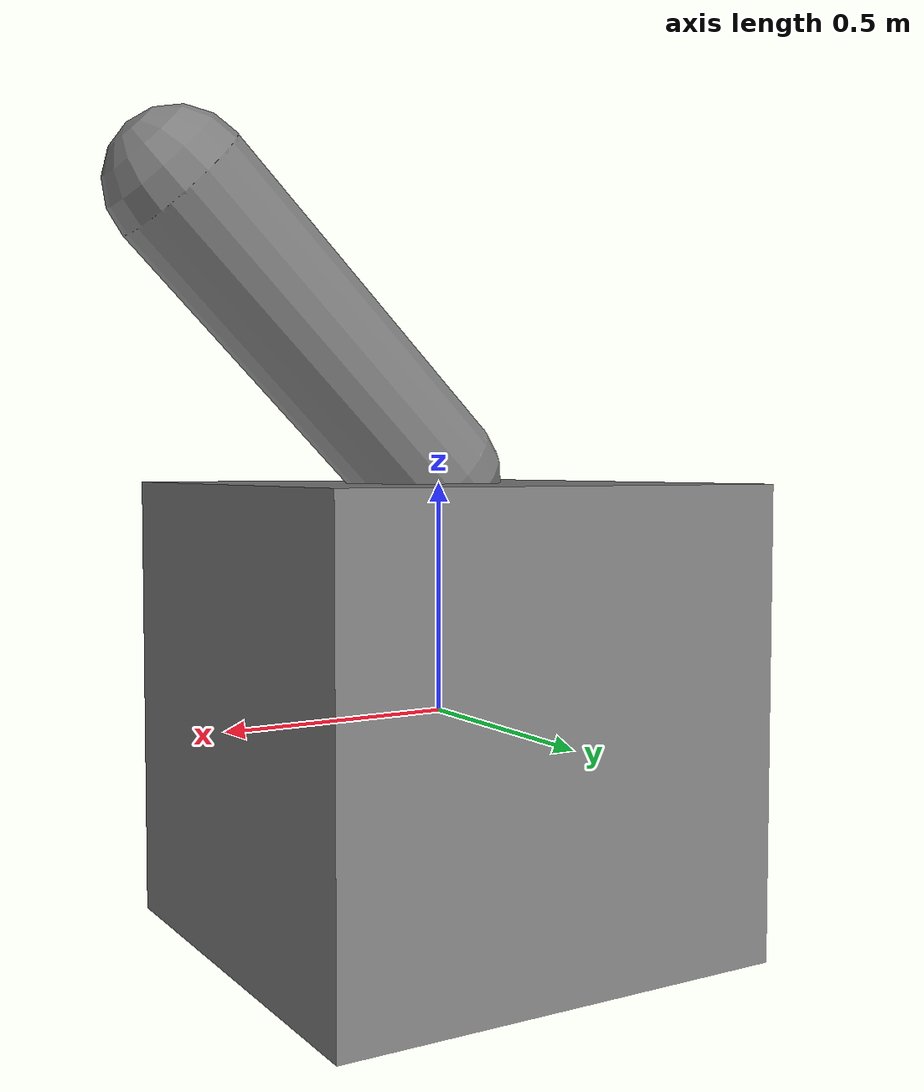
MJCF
<mujoco model="cap_box_oblique">
            <option gravity="0 0 0" timestep="0.001"/>
            <worldbody>
                <body name="box" pos="0 0 0">
                    <joint type="free"/>
                    <geom type="box" size="0.5 0.5 0.5"/>
                </body>
                <body name="cap" pos="0.3 0 0.8" euler="0 45 0">
                    <joint type="free"/>
                    <geom type="capsule" size="0.15 0.4"/>
                </body>
            </worldbody>
        </mujoco>
